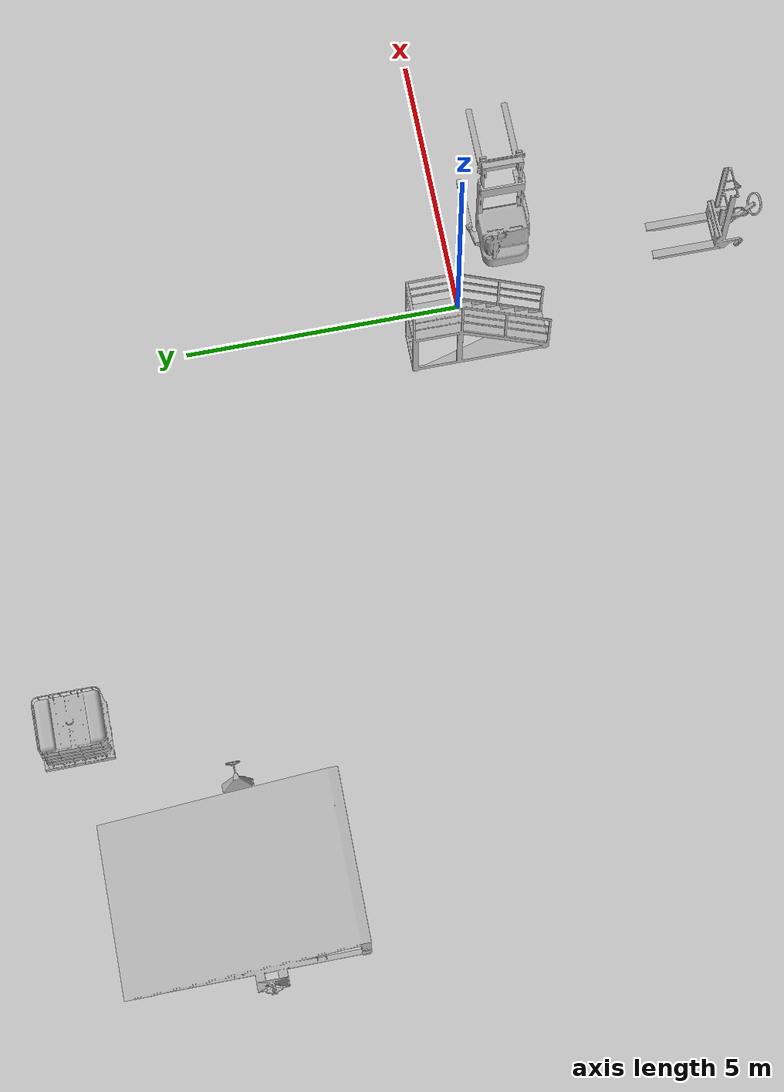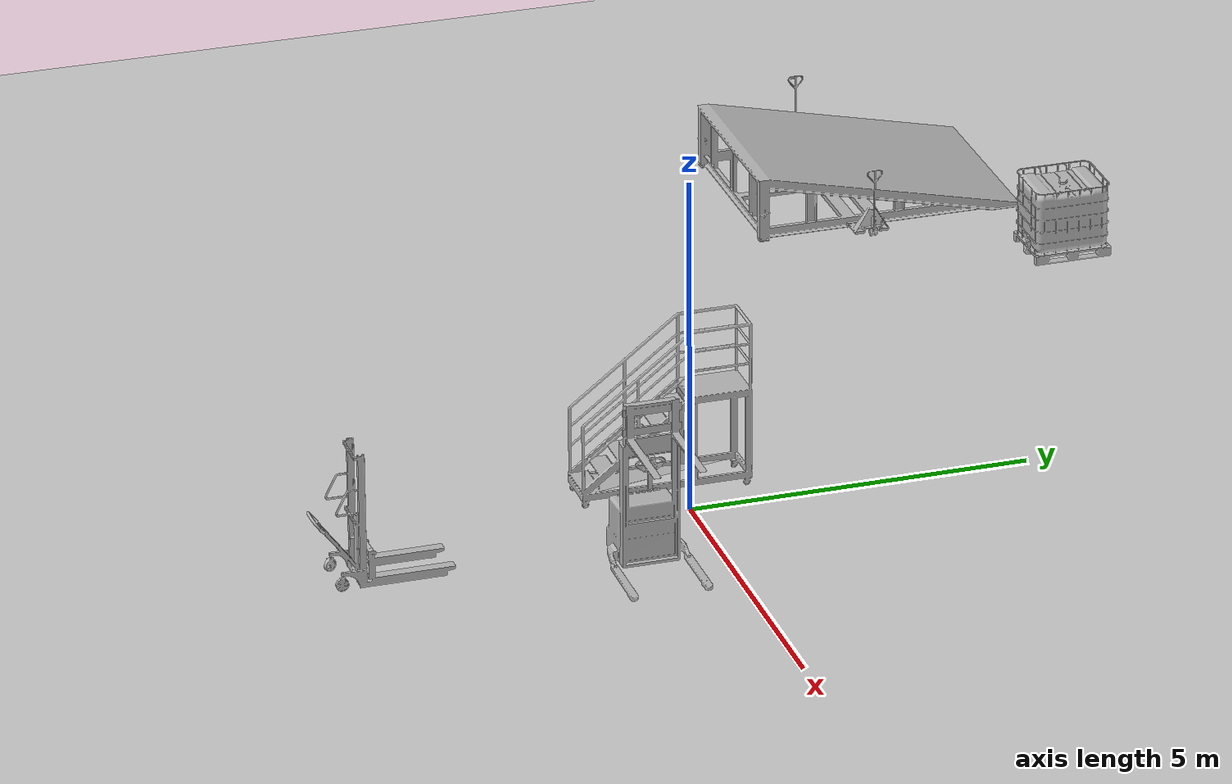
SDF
<sdf version="1.6">
 <world name="default">
  <light name="sun" type="directional">
   <pose>0 0 10 0 -0 0</pose>
   <diffuse>0.8 0.8 0.8 1</diffuse>
   <specular>0.2 0.2 0.2 1</specular>
   <attenuation>
    <range>1000</range>
    <constant>0.9</constant>
    <linear>0.01</linear>
    <quadratic>0.001</quadratic>
   </attenuation>
   <direction>-0.5 0.1 -0.9</direction>
  </light>
  <model name="ground_plane">
   <static>1</static>
   <link name="link">
    <collision name="collision">
     <geometry><plane><normal>0 0 1</normal><size>100 100</size></plane></geometry>
     <surface><friction><ode><mu>100</mu><mu2>50</mu2></ode></friction></surface>
    </collision>
    <visual name="visual">
     <cast_shadows>0</cast_shadows>
     <geometry><plane><normal>0 0 1</normal><size>100 100</size></plane></geometry>
     <material>
      <script><uri>file://media/materials/scripts/gazebo.material</uri><name>Gazebo/Grey</name></script>
     </material>
    </visual>
   </link>
  </model>
  <gravity>0 0 -9.8</gravity>
  <magnetic_field>6e-06 2.3e-05 -4.2e-05</magnetic_field>
  <atmosphere type="adiabatic"/>
  <physics name="default_physics" default="0" type="ode">
   <max_step_size>0.001</max_step_size>
   <real_time_factor>1</real_time_factor>
   <real_time_update_rate>1000</real_time_update_rate>
  </physics>
  <scene><ambient>0.4 0.4 0.4 1</ambient><background>0.7 0.7 0.7 1</background><shadows>1</shadows></scene>
  <spherical_coordinates>
   <surface_model>EARTH_WGS84</surface_model>
   <latitude_deg>0</latitude_deg>
   <longitude_deg>0</longitude_deg>
   <elevation>0</elevation>
   <heading_deg>0</heading_deg>
  </spherical_coordinates>
  <model name="Ramp">
   <link name="link">
    <collision name="collision">
     <geometry><mesh><scale>1 1 1</scale><uri>model://Ramp/meshes/Ramp.dae</uri></mesh></geometry>
     <surface><friction><ode><mu>1</mu><mu2>1</mu2></ode></friction></surface>
    </collision>
    <visual name="visual">
     <geometry><mesh><scale>1 1 1</scale><uri>model://Ramp/meshes/Ramp.dae</uri></mesh></geometry>
    </visual>
    <velocity_decay><linear>0</linear><angular>0</angular></velocity_decay>
    <inertial>
     <inertia><ixx>1</ixx><ixy>0</ixy><ixz>0</ixz><iyy>1</iyy><iyz>0</iyz><izz>1</izz></inertia>
     <mass>1</mass>
    </inertial>
   </link>
   <pose>-9.73363 3.88835 0.44451 8.8e-05 -3e-06 0.001538</pose>
  </model>
  <model name="Pallet_tank">
   <link name="link">
    <collision name="collision">
     <geometry><mesh><scale>1 1 1</scale><uri>model://Pallet_tank/meshes/Pallet_tank.dae</uri></mesh></geometry>
     <surface><friction><ode><mu>1</mu><mu2>1</mu2></ode></friction></surface>
    </collision>
    <visual name="visual">
     <geometry><mesh><scale>1 1 1</scale><uri>model://Pallet_tank/meshes/Pallet_tank.dae</uri></mesh></geometry>
    </visual>
    <velocity_decay><linear>0</linear><angular>0</angular></velocity_decay>
    <inertial>
     <inertia><ixx>1</ixx><ixy>0</ixy><ixz>0</ixz><iyy>1</iyy><iyz>0</iyz><izz>1</izz></inertia>
     <mass>1</mass>
    </inertial>
   </link>
   <pose>-6.65041 7.88506 0.532869 4e-06 -2e-06 0.001593</pose>
  </model>
  <model name="Ladder">
   <link name="link">
    <collision name="collision">
     <geometry><mesh><scale>1 1 1</scale><uri>model://Ladder/meshes/Ladder.dae</uri></mesh></geometry>
     <surface><friction><ode><mu>1</mu><mu2>1</mu2></ode></friction></surface>
    </collision>
    <visual name="visual">
     <geometry><mesh><scale>1 1 1</scale><uri>model://Ladder/meshes/Ladder.dae</uri></mesh></geometry>
    </visual>
    <velocity_decay><linear>0</linear><angular>0</angular></velocity_decay>
    <inertial>
     <inertia><ixx>1</ixx><ixy>0</ixy><ixz>0</ixz><iyy>1</iyy><iyz>0</iyz><izz>1</izz></inertia>
     <mass>1</mass>
    </inertial>
   </link>
   <pose>-0.784741 -0.196294 0.124687 0.000104 7e-06 4.1e-05</pose>
  </model>
  <model name="Pallet_Truck">
   <link name="link">
    <collision name="collision">
     <geometry><mesh><scale>1 1 1</scale><uri>model://Pallet_Truck/meshes/Pallet_Truck.dae</uri></mesh></geometry>
     <surface><friction><ode><mu>1</mu><mu2>1</mu2></ode></friction></surface>
    </collision>
    <visual name="visual">
     <geometry><mesh><scale>1 1 1</scale><uri>model://Pallet_Truck/meshes/Pallet_Truck.dae</uri></mesh></geometry>
    </visual>
    <velocity_decay><linear>0</linear><angular>0</angular></velocity_decay>
    <inertial>
     <inertia><ixx>1</ixx><ixy>0</ixy><ixz>0</ixz><iyy>1</iyy><iyz>0</iyz><izz>1</izz></inertia>
     <mass>1</mass>
    </inertial>
   </link>
   <pose>1.54429 -1.05298 0.002449 -0.000886 0.002328 -0</pose>
  </model>
  <model name="Manual_Forklift">
   <link name="link">
    <collision name="collision">
     <geometry>
      <mesh><scale>1 1 1</scale><uri>model://Manual_Forklift/meshes/Manual_Forklift.dae</uri></mesh>
     </geometry>
     <surface><friction><ode><mu>1</mu><mu2>1</mu2></ode></friction></surface>
    </collision>
    <visual name="visual">
     <geometry>
      <mesh><scale>1 1 1</scale><uri>model://Manual_Forklift/meshes/Manual_Forklift.dae</uri></mesh>
     </geometry>
    </visual>
    <velocity_decay><linear>0</linear><angular>0</angular></velocity_decay>
    <inertial>
     <inertia><ixx>1</ixx><ixy>0</ixy><ixz>0</ixz><iyy>1</iyy><iyz>0</iyz><izz>1</izz></inertia>
     <mass>1</mass>
    </inertial>
   </link>
   <pose>0.57825 -4.91217 -0.061284 8.9e-05 2.4e-05 -0</pose>
  </model>
 </world>
</sdf>
